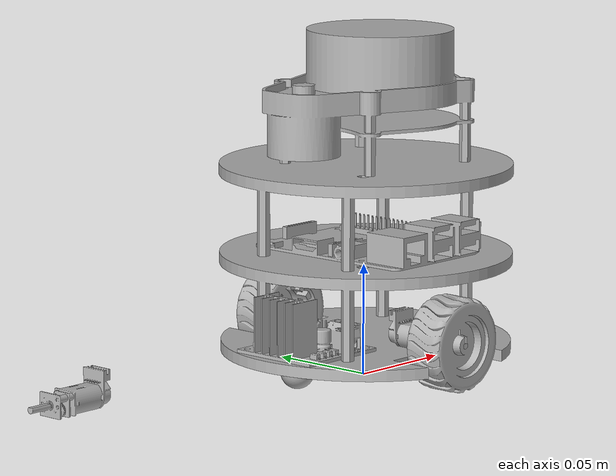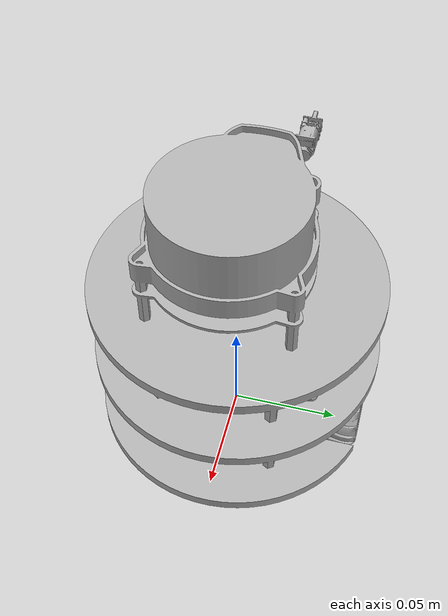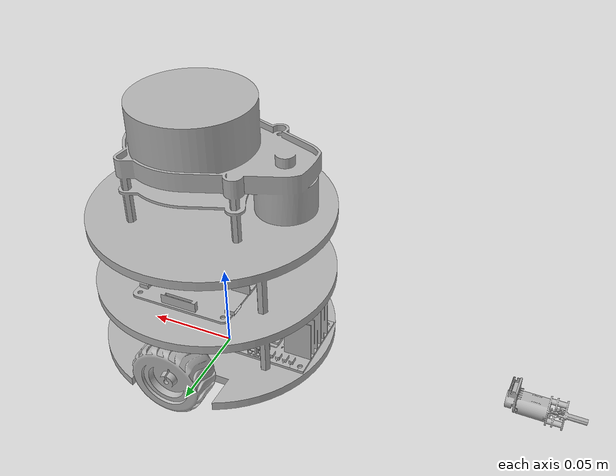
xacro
<?xml version="1.0" ?>
<robot name="sbot" xmlns:xacro="http://www.ros.org/wiki/xacro">

<xacro:include filename="$(find sbot_description)/urdf/materials.xacro" />
<xacro:include filename="$(find sbot_description)/urdf/sbot.trans" />
<xacro:include filename="$(find sbot_description)/gazebo/sbot_plugins.gazebo" />
<xacro:include filename="$(find sbot_description)/gazebo/sbot_materials.gazebo" />
<xacro:include filename="$(find sbot_description)/gazebo/sbot_physics.gazebo" />
<xacro:include filename="$(find realsense_ros_gazebo)/xacro/depthcam.xacro" />

<link name="base_link">
  <inertial>
    <origin rpy="0 0 0" xyz="0.0030130910059084394 0.0014669089311553155 0.055908150593734406"/>
    <mass value="0.23247786120094818"/>
    <inertia ixx="0.000458" ixy="0.0" ixz="1e-06" iyy="0.000499" iyz="1e-06" izz="0.000486"/>
  </inertial>
  <visual>
    <origin rpy="0 0 0" xyz="0 0 0"/>
    <geometry>
      <mesh filename="package://sbot_description/meshes/base_link.stl" scale="0.001 0.001 0.001"/>
    </geometry>
    <material name="silver"/>
  </visual>
  <collision>
    <origin rpy="0 0 0" xyz="0 0 0"/>
    <geometry>
      <mesh filename="package://sbot_description/meshes/base_link.stl" scale="0.001 0.001 0.001"/>
    </geometry>
  </collision>
</link>

<link name="motor_right_1">
  <inertial>
    <origin rpy="0 0 0" xyz="2.6693163065029304e-05 -0.031571062158037365 0.005505365676834351"/>
    <mass value="0.020403784271412942"/>
    <inertia ixx="2e-06" ixy="0.0" ixz="-0.0" iyy="0.0" iyz="-0.0" izz="2e-06"/>
  </inertial>
  <visual>
    <origin rpy="0 0 0" xyz="-0.002851 -0.001343 -0.016"/>
    <geometry>
      <mesh filename="package://sbot_description/meshes/motor_right_1.stl" scale="0.001 0.001 0.001"/>
    </geometry>
    <material name="silver"/>
  </visual>
  <collision>
    <origin rpy="0 0 0" xyz="-0.002851 -0.001343 -0.016"/>
    <geometry>
      <mesh filename="package://sbot_description/meshes/motor_right_1.stl" scale="0.001 0.001 0.001"/>
    </geometry>
  </collision>
</link>

<link name="motor_left_1">
  <inertial>
    <origin rpy="0 0 0" xyz="-2.7446533033708732e-05 0.03357062892676921 0.005505366569773813"/>
    <mass value="0.020403809268492824"/>
    <inertia ixx="2e-06" ixy="0.0" ixz="0.0" iyy="0.0" iyz="0.0" izz="2e-06"/>
  </inertial>
  <visual>
    <origin rpy="0 0 0" xyz="-0.002851 -0.001343 -0.016"/>
    <geometry>
      <mesh filename="package://sbot_description/meshes/motor_left_1.stl" scale="0.001 0.001 0.001"/>
    </geometry>
    <material name="silver"/>
  </visual>
  <collision>
    <origin rpy="0 0 0" xyz="-0.002851 -0.001343 -0.016"/>
    <geometry>
      <mesh filename="package://sbot_description/meshes/motor_left_1.stl" scale="0.001 0.001 0.001"/>
    </geometry>
  </collision>
</link>

<link name="wheel_right_1">
  <inertial>
    <origin rpy="0 0 0" xyz="-3.7664430868134327e-07 0.0075395273198648055 -6.141588042178625e-06"/>
    <mass value="0.020021601354988452"/>
    <inertia ixx="3e-06" ixy="0.0" ixz="0.0" iyy="5e-06" iyz="-0.0" izz="3e-06"/>
  </inertial>
  <visual>
    <origin rpy="0 0 0" xyz="-0.002851 0.056957 -0.021"/>
    <geometry>
      <mesh filename="package://sbot_description/meshes/wheel_right_1.stl" scale="0.001 0.001 0.001"/>
    </geometry>
    <material name="silver"/>
  </visual>
  <collision>
    <origin rpy="0 0 0" xyz="-0.002851 0.056957 -0.021"/>
    <geometry>
      <mesh filename="package://sbot_description/meshes/wheel_right_1.stl" scale="0.001 0.001 0.001"/>
    </geometry>
  </collision>
</link>

<link name="wheel_left_1">
  <inertial>
    <origin rpy="0 0 0" xyz="-3.7812528066397816e-07 -0.007539957792592984 -6.14158804220985e-06"/>
    <mass value="0.02002160135498825"/>
    <inertia ixx="3e-06" ixy="0.0" ixz="0.0" iyy="5e-06" iyz="0.0" izz="3e-06"/>
  </inertial>
  <visual>
    <origin rpy="0 0 0" xyz="-0.002851 -0.061643 -0.021"/>
    <geometry>
      <mesh filename="package://sbot_description/meshes/wheel_left_1.stl" scale="0.001 0.001 0.001"/>
    </geometry>
    <material name="silver"/>
  </visual>
  <collision>
    <origin rpy="0 0 0" xyz="-0.002851 -0.061643 -0.021"/>
    <geometry>
      <mesh filename="package://sbot_description/meshes/wheel_left_1.stl" scale="0.001 0.001 0.001"/>
    </geometry>
  </collision>
</link>

<link name="raspberry_pi_1">
  <inertial>
    <origin rpy="0 0 0" xyz="-0.0012543861563304364 -0.01496568809013773 0.004888830680915349"/>
    <mass value="0.13472167579144456"/>
    <inertia ixx="8.3e-05" ixy="0.0" ixz="0.0" iyy="4.1e-05" iyz="9e-06" izz="0.000118"/>
  </inertial>
  <visual>
    <origin rpy="0 0 0" xyz="-0.002851 -0.001343 -0.056"/>
    <geometry>
      <mesh filename="package://sbot_description/meshes/raspberry_pi_1.stl" scale="0.001 0.001 0.001"/>
    </geometry>
    <material name="silver"/>
  </visual>
  <collision>
    <origin rpy="0 0 0" xyz="-0.002851 -0.001343 -0.056"/>
    <geometry>
      <mesh filename="package://sbot_description/meshes/raspberry_pi_1.stl" scale="0.001 0.001 0.001"/>
    </geometry>
  </collision>
</link>

<link name="lidar_1">
  <inertial>
    <origin rpy="0 0 0" xyz="-0.0002944773615637473 -0.0010002155704046025 0.037701142222791195"/>
    <mass value="1.151561654231423"/>
    <inertia ixx="0.000489" ixy="0.0" ixz="-0.000148" iyy="0.000861" iyz="0.0" izz="0.000987"/>
  </inertial>
  <visual>
    <origin rpy="0 0 0" xyz="-0.002851 -0.001343 -0.096"/>
    <geometry>
      <mesh filename="package://sbot_description/meshes/lidar_1.stl" scale="0.001 0.001 0.001"/>
    </geometry>
    <material name="silver"/>
  </visual>
  <collision>
    <origin rpy="0 0 0" xyz="-0.002851 -0.001343 -0.096"/>
    <geometry>
      <mesh filename="package://sbot_description/meshes/lidar_1.stl" scale="0.001 0.001 0.001"/>
    </geometry>
  </collision>
</link>

<link name="motor_driver_1">
  <inertial>
    <origin rpy="0 0 0" xyz="-0.04002253095513978 -0.0003531151179055718 0.006585464632791877"/>
    <mass value="0.009766883957531803"/>
    <inertia ixx="2e-06" ixy="0.0" ixz="0.0" iyy="2e-06" iyz="0.0" izz="3e-06"/>
  </inertial>
  <visual>
    <origin rpy="0 0 0" xyz="-0.002851 -0.001343 -0.016"/>
    <geometry>
      <mesh filename="package://sbot_description/meshes/motor_driver_1.stl" scale="0.001 0.001 0.001"/>
    </geometry>
    <material name="silver"/>
  </visual>
  <collision>
    <origin rpy="0 0 0" xyz="-0.002851 -0.001343 -0.016"/>
    <geometry>
      <mesh filename="package://sbot_description/meshes/motor_driver_1.stl" scale="0.001 0.001 0.001"/>
    </geometry>
  </collision>
</link>

<link name="imu_1">
  <inertial>
    <origin rpy="0 0 0" xyz="-3.7779124422094093e-07 -2.1557040461332375e-07 -0.0029999999999997806"/>
    <mass value="0.01098999999999996"/>
    <inertia ixx="1e-06" ixy="-0.0" ixz="0.0" iyy="0.0" iyz="-0.0" izz="1e-06"/>
  </inertial>
  <visual>
    <origin rpy="0 0 0" xyz="-0.002851 -0.001343 -0.091"/>
    <geometry>
      <mesh filename="package://sbot_description/meshes/imu_1.stl" scale="0.001 0.001 0.001"/>
    </geometry>
    <material name="silver"/>
  </visual>
  <collision>
    <origin rpy="0 0 0" xyz="-0.002851 -0.001343 -0.091"/>
    <geometry>
      <mesh filename="package://sbot_description/meshes/imu_1.stl" scale="0.001 0.001 0.001"/>
    </geometry>
  </collision>
</link>

<link name="caster_front_1">
  <inertial>
    <origin rpy="0 0 0" xyz="0.04499962220875584 -2.155704046666665e-07 -0.004333823529411766"/>
    <mass value="0.004055599766243573"/>
    <inertia ixx="0.0" ixy="-0.0" ixz="-0.0" iyy="0.0" iyz="0.0" izz="0.0"/>
  </inertial>
  <visual>
    <origin rpy="0 0 0" xyz="-0.002851 -0.001343 -0.011"/>
    <geometry>
      <mesh filename="package://sbot_description/meshes/caster_front_1.stl" scale="0.001 0.001 0.001"/>
    </geometry>
    <material name="silver"/>
  </visual>
  <collision>
    <origin rpy="0 0 0" xyz="-0.002851 -0.001343 -0.011"/>
    <geometry>
      <mesh filename="package://sbot_description/meshes/caster_front_1.stl" scale="0.001 0.001 0.001"/>
    </geometry>
  </collision>
</link>

<link name="caster_back_1">
  <inertial>
    <origin rpy="0 0 0" xyz="-0.045000377791244155 -2.1557040466796754e-07 -0.004333823529411766"/>
    <mass value="0.004055599766243573"/>
    <inertia ixx="0.0" ixy="-0.0" ixz="0.0" iyy="0.0" iyz="-0.0" izz="0.0"/>
  </inertial>
  <visual>
    <origin rpy="0 0 0" xyz="-0.002851 -0.001343 -0.011"/>
    <geometry>
      <mesh filename="package://sbot_description/meshes/caster_back_1.stl" scale="0.001 0.001 0.001"/>
    </geometry>
    <material name="silver"/>
  </visual>
  <collision>
    <origin rpy="0 0 0" xyz="-0.002851 -0.001343 -0.011"/>
    <geometry>
      <mesh filename="package://sbot_description/meshes/caster_back_1.stl" scale="0.001 0.001 0.001"/>
    </geometry>
  </collision>
</link>

<joint name="right_motor_joint" type="fixed">
  <origin rpy="0 0 0" xyz="0.002851 0.001343 0.016"/>
  <parent link="base_link"/>
  <child link="motor_right_1"/>
</joint>

<joint name="left_motor_joint" type="fixed">
  <origin rpy="0 0 0" xyz="0.002851 0.001343 0.016"/>
  <parent link="base_link"/>
  <child link="motor_left_1"/>
</joint>

<joint name="right_wheel_joint" type="continuous">
  <origin rpy="0 0 0" xyz="0.0 -0.0583 0.005"/>
  <parent link="motor_right_1"/>
  <child link="wheel_right_1"/>
  <axis xyz="-0.0 1.0 -0.0"/>
</joint>

<joint name="left_wheel_joint" type="continuous">
  <origin rpy="0 0 0" xyz="0.0 0.0603 0.005"/>
  <parent link="motor_left_1"/>
  <child link="wheel_left_1"/>
  <axis xyz="-0.0 1.0 -0.0"/>
</joint>

<joint name="r_pi_joint" type="fixed">
  <origin rpy="0 0 0" xyz="0.002851 0.001343 0.056"/>
  <parent link="base_link"/>
  <child link="raspberry_pi_1"/>
</joint>

<joint name="lidar_joint" type="fixed">
  <origin rpy="0 0 0" xyz="0.002851 0.001343 0.096"/>
  <parent link="base_link"/>
  <child link="lidar_1"/>
</joint>

<joint name="Rigid84" type="fixed">
  <origin rpy="0 0 0" xyz="0.002851 0.001343 0.016"/>
  <parent link="base_link"/>
  <child link="motor_driver_1"/>
</joint>

<joint name="Rigid85" type="fixed">
  <origin rpy="0 0 0" xyz="0.002851 0.001343 0.091"/>
  <parent link="base_link"/>
  <child link="imu_1"/>
</joint>

<joint name="front_caster_joint" type="fixed">
  <origin rpy="0 0 0" xyz="0.002851 0.001343 0.0115"/>
  <parent link="base_link"/>
  <child link="caster_front_1"/>
</joint>

<joint name="back_caster_joint" type="fixed">
  <origin rpy="0 0 0" xyz="0.002851 0.001343 0.0115"/>
  <parent link="base_link"/>
  <child link="caster_back_1"/>
</joint>

</robot>

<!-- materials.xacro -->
<robot name="sbot" xmlns:xacro="http://www.ros.org/wiki/xacro" >

<material name="silver">
  <color rgba="0.700 0.700 0.700 1.000"/>
</material>

</robot>

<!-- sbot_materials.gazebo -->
<robot name="sbot" xmlns:xacro="http://www.ros.org/wiki/xacro" >

<xacro:property name="body_color" value="Gazebo/White" />
<xacro:property name="wheel_color" value="Gazebo/Black" />
<xacro:property name="lidar_color" value="Gazebo/Blue" />
<xacro:property name="caster_color" value="Gazebo/Black" />
<xacro:property name="motor_driver_color" value="Gazebo/Red" />
<xacro:property name="raspberry_pi_color" value="Gazebo/Green" />
<xacro:property name="realsense_color" value="Gazebo/Grey" />

<gazebo reference="base_link">
  <material>${body_color}</material>
</gazebo>

<gazebo reference="motor_right_1">
  <material>${body_color}</material>
</gazebo>

<gazebo reference="motor_left_1">
  <material>${body_color}</material>
</gazebo>

<gazebo reference="wheel_right_1">
  <material>${wheel_color}</material>
</gazebo>

<gazebo reference="wheel_left_1">
  <material>${wheel_color}</material>
</gazebo>

<gazebo reference="raspberry_pi_1">
  <material>${raspberry_pi_color}</material>
</gazebo>

<gazebo reference="lidar_1">
  <material>${lidar_color}</material>
</gazebo>

<gazebo reference="motor_driver_1">
  <material>${motor_driver_color}</material>
</gazebo>

<gazebo reference="imu_1">
  <material>${body_color}</material>
</gazebo>

<gazebo reference="caster_front_1">
  <material>${caster_color}</material>
</gazebo>

<gazebo reference="caster_back_1">
  <material>${caster_color}</material>
</gazebo>

</robot>
